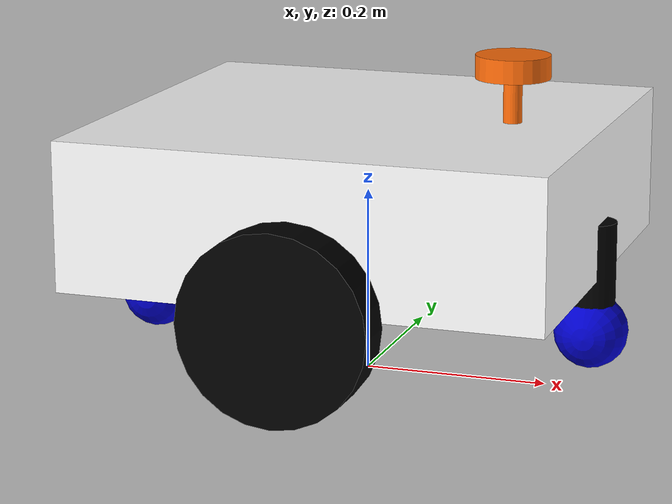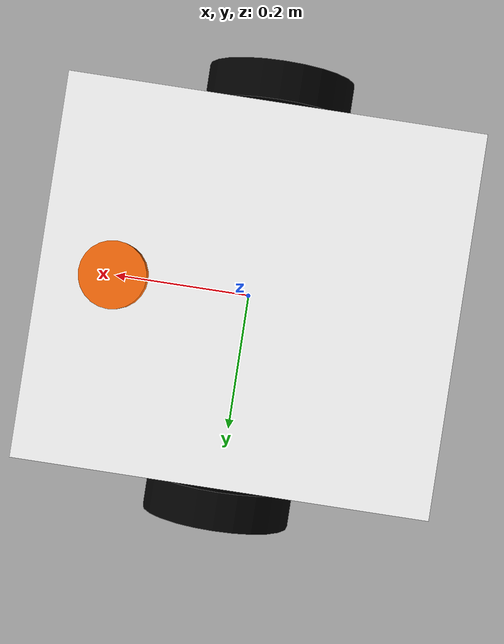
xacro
<?xml version="1.0"?>
<robot name="xjrobot" xmlns:xacro="http://ros.org/wiki/xacro">
  <!-- 实机专用主组装文件。
       这份 xacro 独立放在 xjrobot_base 下，目的是让实机和仿真的固定关节关系可以分别维护。 -->
  <xacro:include filename="$(find xjrobot_base)/urdf/common_properties.xacro"/>
  <xacro:include filename="$(find xjrobot_base)/urdf/mech/chassis.urdf.xacro"/>
  <xacro:include filename="$(find xjrobot_base)/urdf/sensors/lidar_2d.urdf.xacro"/>
  <xacro:include filename="$(find xjrobot_base)/urdf/sensors/lidar_3d.urdf.xacro"/>
  <xacro:include filename="$(find xjrobot_base)/urdf/sensors/imu.urdf.xacro"/>

  <xacro:xjrobot_chassis/>
  <xacro:xjrobot_lidar_2d/>
  <xacro:xjrobot_lidar_3d/>
  <xacro:xjrobot_imu/>
</robot>

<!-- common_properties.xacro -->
<robot name="xacro_properties" xmlns:xacro="http://ros.org/wiki/xacro">

  <!-- 实机专用颜色/材质定义。
       当前与仿真版本保持一致，后续如果只想调整实机显示效果，可单独修改本文件。 -->

  <material name="black">
      <color rgba="0.0 0.0 0.0 1.0"/>
  </material>

  <material name="dark">
    <color rgba="0.3 0.3 0.3 1.0"/>
  </material>
  <material name="light_black">
    <color rgba="0.4 0.4 0.4 1.0"/>
  </material>

  <material name="blue">
    <color rgba="0.0 0.0 0.8 1.0"/>
  </material>

  <material name="green">
    <color rgba="0.0 0.8 0.0 1.0"/>
  </material>

  <material name="grey">
    <color rgba="0.5 0.5 0.5 1.0"/>
  </material>

  <material name="orange">
    <color rgba="${255/255} ${108/255} ${10/255} 1.0"/>
  </material>

  <material name="brown">
    <color rgba="${222/255} ${207/255} ${195/255} 1.0"/>
  </material>

  <material name="red">
    <color rgba="0.8 0.0 0.0 1.0"/>
  </material>

  <material name="white">
    <color rgba="1.0 1.0 1.0 1.0"/>
  </material>

  <material name="ywhite">
    <color rgba="1.0 1.0 1.0 1.0"/>
  </material>
</robot>

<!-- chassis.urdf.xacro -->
<robot xmlns:xacro="http://ros.org/wiki/xacro">
  <!-- 实机专用底盘主体与轮系。
       当前几何与关节关系先和仿真版本保持一致，后续可只改这份，不影响仿真。 -->
  <xacro:macro name="xjrobot_chassis">
    <link name="base_footprint"/>

    <link name="base_link">
      <inertial>
        <origin xyz="0 0 0" rpy="0 0 0" />
        <mass value="20" />
        <inertia ixx="0.64" ixy="0.0" ixz="0.0" iyy="1.39" iyz="0.0" izz="1.95" />
      </inertial>
      <visual>
        <origin xyz="0 0 0.08" rpy="0 0 0" />
        <geometry>
          <box size="0.52 0.48 0.16" />
        </geometry>
        <material name="white" />
      </visual>
      <collision>
        <origin xyz="0 0 0.08" rpy="0 0 0" />
        <geometry>
          <box size="0.52 0.48 0.16" />
        </geometry>
      </collision>
    </link>

    <joint name="base_footprint_joint" type="fixed">
      <!-- 固定 TF: base_footprint -> base_link
           实机版本当前与仿真保持一致，xyz=(0, 0, 0), rpy=(0, 0, 0)。
           如果后续你希望实机主车体相对地面投影存在细微偏移或安装角，请修改这里。 -->
      <origin xyz="0 0 0.125" rpy="0 0 0" />
      <parent link="base_footprint" />
      <child link="base_link" />
    </joint>

    <link name="fore_universal_wheel_link">
      <inertial>
        <origin xyz="0 0 0" rpy="0 0 0" />
        <mass value="0.5" />
        <inertia ixx="9.4792E-5" ixy="0" ixz="0" iyy="1.5625E-4" iyz="0" izz="9.4792E-5" />
      </inertial>
      <visual>
        <origin xyz="0 0 0" rpy="0 0 0" />
        <geometry>
          <cylinder length="0.12" radius="0.025" />
        </geometry>
        <material name="black" />
      </visual>
      <collision>
        <origin xyz="0 0 0" rpy="0 0 0" />
        <geometry>
          <cylinder length="0.12" radius="0.025" />
        </geometry>
      </collision>
    </link>
    <joint name="joint_fuw" type="continuous">
      <origin xyz="0.25 0 0" rpy="0 0 0" />
      <parent link="base_link" />
      <child link="fore_universal_wheel_link" />
      <axis xyz="0 0 1" />
      <safety_controller k_velocity="0" />
    </joint>

    <link name="small_fore_wheel_link">
      <inertial>
        <origin xyz="0 0 0" rpy="0 0 0" />
        <mass value="0.5" />
        <inertia ixx="9.4792E-5" ixy="0" ixz="0" iyy="1.5625E-4" iyz="0" izz="9.4792E-5" />
      </inertial>
      <visual>
        <origin xyz="0 0 0" rpy="1.57 0 0" />
        <geometry>
          <sphere radius="0.04" />
        </geometry>
        <material name="blue" />
      </visual>
      <collision>
        <origin xyz="0 0 0" rpy="1.57 0 0" />
        <geometry>
          <sphere radius="0.04" />
        </geometry>
      </collision>
    </link>
    <joint name="joint_ffw" type="continuous">
      <origin xyz="0 0 -0.06" rpy="0 0 0" />
      <parent link="fore_universal_wheel_link" />
      <child link="small_fore_wheel_link" />
      <axis xyz="0 1 0" />
      <safety_controller k_velocity="0" />
    </joint>

    <link name="back_universal_wheel_link">
      <inertial>
        <origin xyz="0 0 0" rpy="0 0 0" />
        <mass value="0.5" />
        <inertia ixx="9.4792E-5" ixy="0" ixz="0" iyy="1.5625E-4" iyz="0" izz="9.4792E-5" />
      </inertial>
      <visual>
        <origin xyz="0 0 0" rpy="0 0 0" />
        <geometry>
          <cylinder length="0.12" radius="0.025" />
        </geometry>
        <material name="black" />
      </visual>
      <collision>
        <origin xyz="0 0 0" rpy="0 0 0" />
        <geometry>
          <cylinder length="0.12" radius="0.025" />
        </geometry>
      </collision>
    </link>
    <joint name="joint_buw" type="continuous">
      <origin xyz="-0.25 0 0" rpy="0 0 0" />
      <parent link="base_link" />
      <child link="back_universal_wheel_link" />
      <axis xyz="0 0 1" />
      <safety_controller k_velocity="0" />
    </joint>

    <link name="small_back_wheel_link">
      <inertial>
        <origin xyz="0 0 0" rpy="0 0 0" />
        <mass value="0.5" />
        <inertia ixx="9.4792E-5" ixy="0" ixz="0" iyy="1.5625E-4" iyz="0" izz="9.4792E-5" />
      </inertial>
      <visual>
        <origin xyz="0 0 0" rpy="1.57 0 0" />
        <geometry>
          <sphere radius="0.04" />
        </geometry>
        <material name="blue" />
      </visual>
      <collision>
        <origin xyz="0 0 0" rpy="1.57 0 0" />
        <geometry>
          <sphere radius="0.04" />
        </geometry>
      </collision>
    </link>
    <joint name="joint_bfw" type="continuous">
      <origin xyz="0 0 -0.06" rpy="0 0 0" />
      <parent link="back_universal_wheel_link" />
      <child link="small_back_wheel_link" />
      <axis xyz="0 1 0" />
      <safety_controller k_velocity="0" />
    </joint>

    <link name="left_wheel_link">
      <inertial>
        <origin xyz="0 0 0" rpy="0 0 0" />
        <mass value="2" />
        <inertia ixx="0.002867" ixy="0" ixz="0" iyy="0.0049" iyz="0" izz="0.002867" />
      </inertial>
      <visual>
        <origin xyz="0 0 0" rpy="1.57 0 0" />
        <geometry>
          <cylinder length="0.05" radius="0.1" />
        </geometry>
        <material name="black" />
      </visual>
      <collision>
        <origin xyz="0 0 0" rpy="1.57 0 0" />
        <geometry>
          <cylinder length="0.05" radius="0.1" />
        </geometry>
      </collision>
    </link>
    <joint name="joint_lw" type="continuous">
      <origin xyz="0 0.28 0" rpy="0 0 0" />
      <parent link="base_link" />
      <child link="left_wheel_link" />
      <axis xyz="0 1 0" />
      <safety_controller k_velocity="0" />
    </joint>

    <link name="right_wheel_link">
      <inertial>
        <origin xyz="0 0 0" rpy="0 0 0" />
        <mass value="2" />
        <inertia ixx="0.002867" ixy="0" ixz="0" iyy="0.0049" iyz="0" izz="0.002867" />
      </inertial>
      <visual>
        <origin xyz="0 0 0" rpy="1.57 0 0" />
        <geometry>
          <cylinder length="0.05" radius="0.1" />
        </geometry>
        <material name="black" />
      </visual>
      <collision>
        <origin xyz="0 0 0" rpy="1.57 0 0" />
        <geometry>
          <cylinder length="0.05" radius="0.1" />
        </geometry>
      </collision>
    </link>
    <joint name="joint_rw" type="continuous">
      <origin xyz="0 -0.28 0" rpy="0 0 0" />
      <parent link="base_link" />
      <child link="right_wheel_link" />
      <axis xyz="0 1 0" />
      <safety_controller k_velocity="0" />
    </joint>
  </xacro:macro>
</robot>

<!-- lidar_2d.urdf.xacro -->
<robot xmlns:xacro="http://ros.org/wiki/xacro">
  <!-- 实机专用 2D 雷达模型。当前安装关系与仿真版本保持一致。 -->
  <xacro:macro name="xjrobot_lidar_2d">
    <link name="lidar_2d_link">
      <visual>
        <origin xyz="0 0 0" rpy="0 0 0" />
        <geometry>
          <cylinder length="0.025" radius="0.04" />
        </geometry>
        <material name="orange" />
      </visual>
      <visual>
        <origin xyz="0 0 -0.03" rpy="0 0 0" />
        <geometry>
          <cylinder length="0.08" radius="0.01" />
        </geometry>
        <material name="orange" />
      </visual>
    </link>

    <joint name="joint_lidar_2d" type="fixed">
      <!-- 固定 TF: base_link -> lidar_2d_link
           实机版本当前与仿真保持一致，xyz=(0.16, 0, 0.22), rpy=(0, 0, 0)。
           后续调整 2D 雷达安装位置，请修改这里。 -->
      <origin xyz="0.16 0 0.22" rpy="0 0 0" />
      <parent link="base_link" />
      <child link="lidar_2d_link" />
      <axis xyz="0 0 0" />
      <safety_controller k_velocity="0" />
    </joint>
  </xacro:macro>
</robot>

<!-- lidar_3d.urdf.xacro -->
<robot xmlns:xacro="http://ros.org/wiki/xacro">
  <!-- 实机专用 3D 雷达模型。当前安装关系与仿真版本保持一致。 -->
  <xacro:macro name="xjrobot_lidar_3d">
    <link name="lidar_3d_link">
      <visual>
        <origin xyz="0 0 0" rpy="0 0 0" />
        <geometry>
          <cylinder length="0.06" radius="0.0325" />
        </geometry>
        <material name="grey" />
      </visual>
    </link>

    <joint name="joint_lidar_3d" type="fixed">
      <!-- 固定 TF: base_link -> lidar_3d_link
           实机版本当前与仿真保持一致，xyz=(0.285, 0, 0.165), rpy=(0, 0, 0)。
           后续调整 3D 雷达安装位置，请修改这里。 -->
      <origin xyz="0.17262 0 0.0" rpy="0.0 0.0 0.0" />
      <parent link="base_link" />
      <child link="lidar_3d_link" />
      <axis xyz="0 0 0" />
      <safety_controller k_velocity="0" />
    </joint>
  </xacro:macro>
</robot>

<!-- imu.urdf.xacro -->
<robot xmlns:xacro="http://ros.org/wiki/xacro">
  <!-- IMU 本体（仅 link/joint），对齐 lino：直接挂在 base_link -->
  <xacro:macro name="xjrobot_imu">
    <link name="imu_link"/>

    <joint name="joint_imu" type="fixed">
      <!-- 固定 TF: base_link -> imu_link
           当前与仿真保持一致，设置为 xyz=(0.285, 0, 0.165), rpy=(0, 0, 0)。
           这里保持与原模型等效安装位置（原来是相对 lidar_3d_link 的 0 位姿）。
           如果后续 IMU 从雷达处移走，请直接修改这里。 -->
      <origin xyz="0.285 0 0.165" rpy="0 0 0" />
      <parent link="base_link" />
      <child link="imu_link" />
    </joint>
  </xacro:macro>
</robot>
